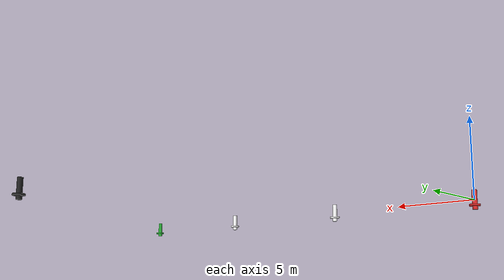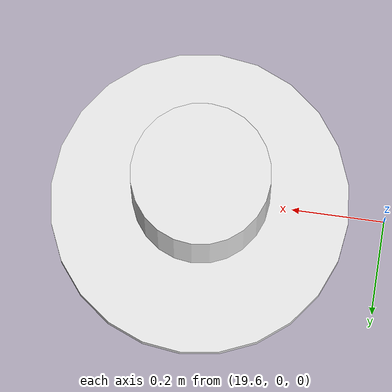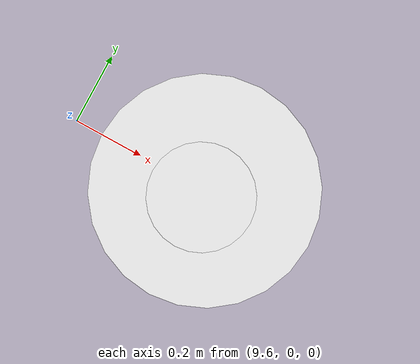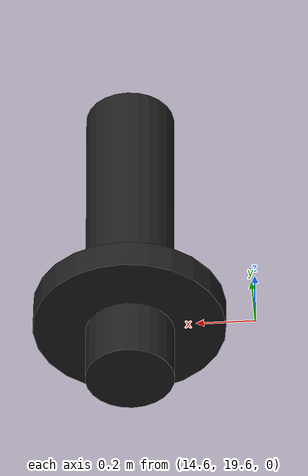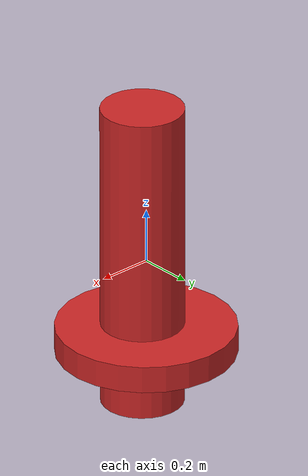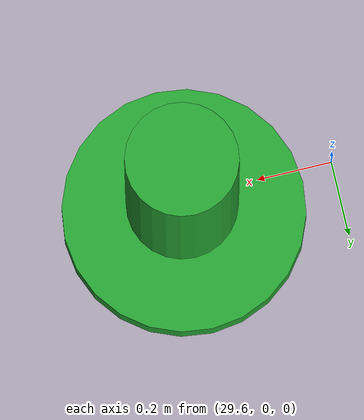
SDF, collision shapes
<?xml version="1.0"?>
<sdf version="1.6">
  <model name="entrance_exit">
    <include>
      <name>mb_marker_buoy_red</name>
      <pose>0 0 0.0 0 0 0</pose>
      <uri>https://fuel.gazebosim.org/1.0/openrobotics/models/mb_marker_buoy_red</uri>
      <plugin name="vrx::PolyhedraBuoyancyDrag"
              filename="libPolyhedraBuoyancyDrag.so">
        <fluid_density>1000</fluid_density>
        <fluid_level>0.0</fluid_level>
        <linear_drag>25.0</linear_drag>
        <angular_drag>2.0</angular_drag>
        <buoyancy name="collision_outer">
          <link_name>link</link_name>
          <pose>0 0 -0.3 0 0 0</pose>
          <geometry>
            <cylinder>
              <radius>0.325</radius>
              <length>0.1</length>
            </cylinder>
          </geometry>
        </buoyancy>
        <wavefield>
          <topic>/vrx/wavefield/parameters</topic>
        </wavefield>
      </plugin>
    </include>

    <include>
      <name>mb_marker_buoy_white_0</name>
      <pose>10 0 0.0 0 0 0</pose>
      <uri>https://fuel.gazebosim.org/1.0/openrobotics/models/mb_marker_buoy_white</uri>
      <plugin name="vrx::PolyhedraBuoyancyDrag"
              filename="libPolyhedraBuoyancyDrag.so">
        <fluid_density>1000</fluid_density>
        <fluid_level>0.0</fluid_level>
        <linear_drag>25.0</linear_drag>
        <angular_drag>2.0</angular_drag>
        <buoyancy name="collision_outer">
          <link_name>link</link_name>
          <pose>0 0 -0.3 0 0 0</pose>
          <geometry>
            <cylinder>
              <radius>0.325</radius>
              <length>0.1</length>
            </cylinder>
          </geometry>
        </buoyancy>
        <wavefield>
          <topic>/vrx/wavefield/parameters</topic>
        </wavefield>
      </plugin>
    </include>

    <include>
      <name>mb_marker_buoy_white_1</name>
      <pose>20 0 0.0 0 0 0</pose>
      <uri>https://fuel.gazebosim.org/1.0/openrobotics/models/mb_marker_buoy_white</uri>
      <plugin name="vrx::PolyhedraBuoyancyDrag"
              filename="libPolyhedraBuoyancyDrag.so">
        <fluid_density>1000</fluid_density>
        <fluid_level>0.0</fluid_level>
        <linear_drag>25.0</linear_drag>
        <angular_drag>2.0</angular_drag>
        <buoyancy name="collision_outer">
          <link_name>link</link_name>
          <pose>0 0 -0.3 0 0 0</pose>
          <geometry>
            <cylinder>
              <radius>0.325</radius>
              <length>0.1</length>
            </cylinder>
          </geometry>
        </buoyancy>
        <wavefield>
          <topic>/vrx/wavefield/parameters</topic>
        </wavefield>
      </plugin>
    </include>

    <include>
      <name>mb_marker_buoy_green</name>
      <pose>30 0 0.0 0 0 0</pose>
      <uri>https://fuel.gazebosim.org/1.0/openrobotics/models/mb_marker_buoy_green</uri>
      <plugin name="vrx::PolyhedraBuoyancyDrag"
              filename="libPolyhedraBuoyancyDrag.so">
        <fluid_density>1000</fluid_density>
        <fluid_level>0.0</fluid_level>
        <linear_drag>25.0</linear_drag>
        <angular_drag>2.0</angular_drag>
        <buoyancy name="collision_outer">
          <link_name>link</link_name>
          <pose>0 0 -0.3 0 0 0</pose>
          <geometry>
            <cylinder>
              <radius>0.325</radius>
              <length>0.1</length>
            </cylinder>
          </geometry>
        </buoyancy>
        <wavefield>
          <topic>/vrx/wavefield/parameters</topic>
        </wavefield>
      </plugin>
    </include>

    <include>
      <name>mb_marker_buoy_black</name>
      <pose>15 20 0.0 0 0 0</pose>
      <uri>https://fuel.gazebosim.org/1.0/openrobotics/models/mb_marker_buoy_black</uri>
      <plugin name="vrx::PolyhedraBuoyancyDrag"
              filename="libPolyhedraBuoyancyDrag.so">
        <fluid_density>1000</fluid_density>
        <fluid_level>0.0</fluid_level>
        <linear_drag>25.0</linear_drag>
        <angular_drag>2.0</angular_drag>
        <buoyancy name="collision_outer">
          <link_name>link</link_name>
          <pose>0 0 -0.3 0 0 0</pose>
          <geometry>
            <cylinder>
              <radius>0.325</radius>
              <length>0.1</length>
            </cylinder>
          </geometry>
        </buoyancy>
        <wavefield>
          <topic>/vrx/wavefield/parameters</topic>
        </wavefield>
      </plugin>
    </include>

  </model>
</sdf>

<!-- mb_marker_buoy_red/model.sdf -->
<sdf version="1.6">
  <model name="mb_marker_buoy_red">
    <link name="link">
      <inertial>
        <pose>0 0 -2 0 0 0</pose>
        <!-- Mass determined based on buoyancy geometry so object
             floats at mid-point of sphere -->
        <mass>20</mass>
        <!-- Mark only - based on cylinder -->
        <inertia>
          <ixx>1.0</ixx>
          <ixy>0</ixy>
          <ixz>0</ixz>
          <iyy>1.0</iyy>
          <iyz>0</iyz>
          <izz>0.1</izz>
        </inertia>
      </inertial>
      <collision name="collision_inner">
        <pose>0 -0.02 0.02 0 0 0</pose>
        <geometry>
          <cylinder>
            <radius>0.15</radius>
            <length>1.15</length>
          </cylinder>
        </geometry>
      </collision>
      <collision name="collision_outer">
        <pose>0 0 -0.3 0 0 0</pose>
        <geometry>
          <cylinder>
            <radius>0.325</radius>
            <length>0.1</length>
          </cylinder>
        </geometry>
      </collision>
      <visual name="visual">
        <pose>0 0 0 1.57079 0 0</pose>
        <geometry>
	        <mesh><uri>model://mb_marker_buoy_red/meshes/mb_marker_buoy.dae</uri></mesh>
        </geometry>
        <material>
          <script>
            <uri>model://mb_marker_buoy_red/materials/scripts/mb_marker_buoy.material</uri>
            <name>mb_marker_buoy/Red</name>
          </script>
        </material>
      </visual>
    </link>
    <plugin name="BuoyancyPlugin" filename="libbuoyancy_gazebo_plugin.so">
      <wave_model>ocean_waves</wave_model>
      <fluid_density>1000</fluid_density>
      <fluid_level>0.0</fluid_level>
      <linear_drag>25.0</linear_drag>
      <angular_drag>2.0</angular_drag>
      <buoyancy name="buoyancy_sphere">
        <link_name>link</link_name>
        <pose>0 0 -0.12 0 0 0</pose>
        <geometry>
          <sphere>
            <radius>0.325</radius>
          </sphere>
        </geometry>
      </buoyancy>
    </plugin>
  </model>
</sdf>

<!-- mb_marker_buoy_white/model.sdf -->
<sdf version="1.6">
  <model name="mb_marker_buoy_white">
    <link name="link">
      <inertial>
        <pose>0 0 -2 0 0 0</pose>
        <!-- Mass determined based on buoyancy geometry so object
             floats at mid-point of sphere -->
        <mass>20</mass>
        <!-- Mark only - based on cylinder -->
        <inertia>
          <ixx>1.0</ixx>
          <ixy>0</ixy>
          <ixz>0</ixz>
          <iyy>1.0</iyy>
          <iyz>0</iyz>
          <izz>0.1</izz>
        </inertia>
      </inertial>
      <collision name="collision_inner">
        <pose>0 -0.02 0.02 0 0 0</pose>
        <geometry>
          <cylinder>
            <radius>0.15</radius>
            <length>1.15</length>
          </cylinder>
        </geometry>
      </collision>
      <collision name="collision_outer">
        <pose>0 0 -0.3 0 0 0</pose>
        <geometry>
          <cylinder>
            <radius>0.325</radius>
            <length>0.1</length>
          </cylinder>
        </geometry>
      </collision>
      <visual name="visual">
        <pose>0 0 0 1.57079 0 0</pose>
        <geometry>
	        <mesh><uri>model://mb_marker_buoy_red/meshes/mb_marker_buoy.dae</uri></mesh>
        </geometry>
        <material>
          <script>
            <uri>file://media/materials/scripts/gazebo.material</uri>
            <name>Gazebo/White</name>
          </script>
        </material>
      </visual>
    </link>
    <plugin name="BuoyancyPlugin" filename="libbuoyancy_gazebo_plugin.so">
      <wave_model>ocean_waves</wave_model>
      <fluid_density>1000</fluid_density>
      <fluid_level>0.0</fluid_level>
      <linear_drag>25.0</linear_drag>
      <angular_drag>2.0</angular_drag>
      <buoyancy name="buoyancy_sphere">
        <link_name>link</link_name>
        <pose>0 0 -0.12 0 0 0</pose>
        <geometry>
          <sphere>
            <radius>0.325</radius>
          </sphere>
        </geometry>
      </buoyancy>
    </plugin>
  </model>
</sdf>

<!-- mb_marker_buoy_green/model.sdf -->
<sdf version="1.6">
  <model name="mb_marker_buoy_green">
    <link name="link">
      <inertial>
        <pose>0 0 -2 0 0 0</pose>
        <!-- Mass determined based on buoyancy geometry so object
             floats at mid-point of sphere -->
        <mass>20</mass>
        <!-- Mark only - based on cylinder -->
        <inertia>
          <ixx>1.0</ixx>
          <ixy>0</ixy>
          <ixz>0</ixz>
          <iyy>1.0</iyy>
          <iyz>0</iyz>
          <izz>0.1</izz>
        </inertia>
      </inertial>
      <collision name="collision_inner">
        <pose>0 -0.02 0.02 0 0 0</pose>
        <geometry>
          <cylinder>
            <radius>0.15</radius>
            <length>1.15</length>
          </cylinder>
        </geometry>
      </collision>
      <collision name="collision_outer">
        <pose>0 0 -0.3 0 0 0</pose>
        <geometry>
          <cylinder>
            <radius>0.325</radius>
            <length>0.1</length>
          </cylinder>
        </geometry>
      </collision>
      <visual name="visual">
        <pose>0 0 0 1.57079 0 0</pose>
        <geometry>
	        <mesh><uri>model://mb_marker_buoy_red/meshes/mb_marker_buoy.dae</uri></mesh>
        </geometry>
        <material>
          <script>
            <uri>model://mb_marker_buoy_green/materials/scripts/mb_marker_buoy.material</uri>
            <name>mb_marker_buoy/Green</name>
          </script>
        </material>
      </visual>
    </link>
    <plugin name="BuoyancyPlugin" filename="libbuoyancy_gazebo_plugin.so">
      <wave_model>ocean_waves</wave_model>
      <fluid_density>1000</fluid_density>
      <fluid_level>0.0</fluid_level>
      <linear_drag>25.0</linear_drag>
      <angular_drag>2.0</angular_drag>
      <buoyancy name="buoyancy_sphere">
        <link_name>link</link_name>
        <pose>0 0 -0.12 0 0 0</pose>
        <geometry>
          <sphere>
            <radius>0.325</radius>
          </sphere>
        </geometry>
      </buoyancy>
    </plugin>
  </model>
</sdf>

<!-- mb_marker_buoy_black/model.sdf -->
<sdf version="1.6">
  <model name="mb_marker_buoy_black">
    <link name="link">
      <inertial>
        <pose>0 0 -2 0 0 0</pose>
        <!-- Mass determined based on buoyancy geometry so object
             floats at mid-point of sphere -->
        <mass>20</mass>
        <!-- Mark only - based on cylinder -->
        <inertia>
          <ixx>1.0</ixx>
          <ixy>0</ixy>
          <ixz>0</ixz>
          <iyy>1.0</iyy>
          <iyz>0</iyz>
          <izz>0.1</izz>
        </inertia>
      </inertial>
      <collision name="collision_inner">
        <pose>0 -0.02 0.02 0 0 0</pose>
        <geometry>
          <cylinder>
            <radius>0.15</radius>
            <length>1.15</length>
          </cylinder>
        </geometry>
      </collision>
      <collision name="collision_outer">
        <pose>0 0 -0.3 0 0 0</pose>
        <geometry>
          <cylinder>
            <radius>0.325</radius>
            <length>0.1</length>
          </cylinder>
        </geometry>
      </collision>
      <visual name="visual">
        <pose>0 0 0 1.57079 0 0</pose>
        <geometry>
	        <mesh><uri>model://mb_marker_buoy_red/meshes/mb_marker_buoy.dae</uri></mesh>
        </geometry>
        <material>
          <script>
            <uri>file://media/materials/scripts/gazebo.material</uri>
            <name>Gazebo/Black</name>
          </script>
        </material>
      </visual>
    </link>
    <plugin name="BuoyancyPlugin" filename="libbuoyancy_gazebo_plugin.so">
      <wave_model>ocean_waves</wave_model>
      <fluid_density>1000</fluid_density>
      <fluid_level>0.0</fluid_level>
      <linear_drag>25.0</linear_drag>
      <angular_drag>2.0</angular_drag>
      <buoyancy name="buoyancy_sphere">
        <link_name>link</link_name>
        <pose>0 0 -0.12 0 0 0</pose>
        <geometry>
          <sphere>
            <radius>0.325</radius>
          </sphere>
        </geometry>
      </buoyancy>
    </plugin>
  </model>
</sdf>
